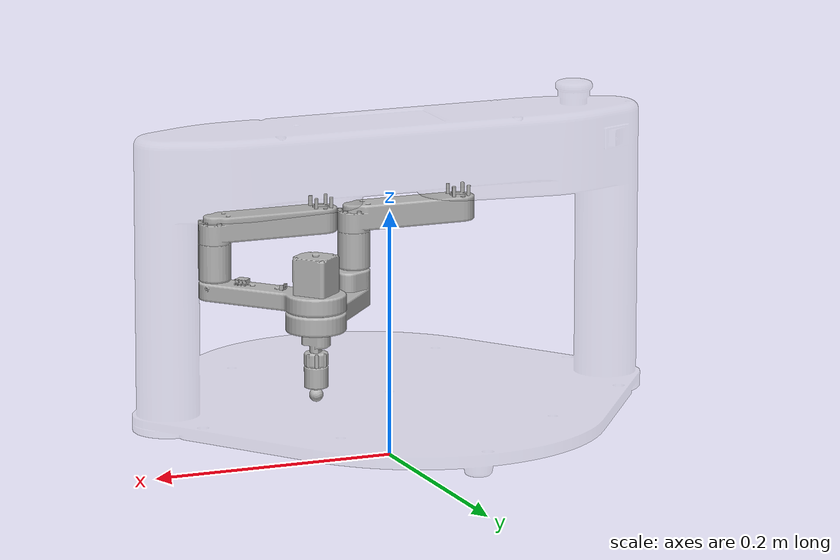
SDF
<?xml version="1.0" ?>
<sdf version="1.7">
  <model name="FiveBar">
    <pose>0 0 0.26  0 0 0</pose>
    <self_collide>false</self_collide>
    <link name="base">
      <pose>0 0 0.0  0 0 0.0</pose>
      <inertial>
        <pose>0 0 -0.5  0 0 0</pose>
        <mass>10.0</mass>
        <inertia>
          <ixx>1e-3</ixx>
          <iyy>1e-3</iyy>
          <izz>1e-3</izz>
          <ixy>0.0</ixy>
          <ixz>0.0</ixz>
          <iyz>0.0</iyz>
        </inertia>
      </inertial>
      <gravity>0</gravity>
      <visual name="baseVisual">
        <pose>0 0 0.0  0 0 3.141592653589793</pose>
        <geometry>
          <mesh>
            <uri>meshes/BASE_Assembly.stl</uri>
            <scale>0.001 0.001 0.001 </scale>
          </mesh>
        </geometry>
        <transparency>0.8</transparency>
      </visual>
    </link>
    <link name="upperArmLeft">
      <pose>0 0 0.0  0 0 0.0</pose>
      <inertial>
        <pose>-0.014 0 -0.07  0 0 0.0</pose>
        <mass>1.0</mass>
        <inertia>
          <ixx>1e-6</ixx>
          <iyy>1e-6</iyy>
          <izz>1e-6</izz>
          <ixy>0.0</ixy>
          <ixz>0.0</ixz>
          <iyz>0.0</iyz>
        </inertia>
      </inertial>
      <gravity>0</gravity>
      <visual name="upperArmLeftVisual">
        <pose>0 0 0.0  0 0 3.141592653589793</pose>
        <geometry>
          <mesh>
            <uri>meshes/Upper_Arm_1.stl</uri>
            <scale>0.001 0.001 0.001 </scale>
          </mesh>
        </geometry>
      </visual>
    </link>
    <link name="lowerArmLeft">
      <pose>0 0 0.0  0 0 0.0</pose>
      <inertial>
        <pose>0.09 0.06796322535 -0.1 0 0 0.0</pose>
        <mass>0.1</mass>
        <inertia>
          <ixx>1e-6</ixx>
          <iyy>1e-6</iyy>
          <izz>1e-6</izz>
          <ixy>0.0</ixy>
          <ixz>0.0</ixz>
          <iyz>0.0</iyz>
        </inertia>
      </inertial>
      <gravity>0</gravity>
      <visual name="lowerArmLeftVisual">
        <pose>0 0 0.0  0 0 3.141592653589793</pose>
        <geometry>
          <mesh>
            <uri>meshes/Lower_Arm.stl</uri>
            <scale>0.001 0.001 0.001 </scale>
          </mesh>
        </geometry>
      </visual>
    </link>
    <link name="upperArmRight">
      <pose>0 0 0.0  0 0 0.0</pose>
      <inertial>
        <pose>0.104 0 -0.07 0 0 0</pose>
        <mass>1.0</mass>
        <inertia>
          <ixx>1e-6</ixx>
          <iyy>1e-6</iyy>
          <izz>1e-6</izz>
          <ixy>0.0</ixy>
          <ixz>0.0</ixz>
          <iyz>0.0</iyz>
        </inertia>
      </inertial>
      <gravity>0</gravity>
      <visual name="upperArmRightVisual">
        <pose>0 0 0.0  0 0 3.141592653589793</pose>
        <geometry>
          <mesh>
            <uri>meshes/Upper_Arm_2.stl</uri>
            <scale>0.001 0.001 0.001 </scale>
          </mesh>
        </geometry>
      </visual>
    </link>
    <link name="lowerArmRight">
      <pose>0 0 0.0  0 0 0.0</pose>
      <inertial>
        <pose>0.09 0.06796322535 -0.1 0 0 0.0</pose>
        <mass>0.1</mass>
        <inertia>
          <ixx>1e-6</ixx>
          <iyy>1e-6</iyy>
          <izz>1e-6</izz>
          <ixy>0.0</ixy>
          <ixz>0.0</ixz>
          <iyz>0.0</iyz>
        </inertia>
      </inertial>
      <gravity>0</gravity>
      <visual name="lowerArmRightVisual">
        <pose>0 0 0.0  0 0 3.141592653589793</pose>
        <geometry>
          <mesh>
            <uri>meshes/Z_Axis_Assembly.stl</uri>
            <scale>0.001 0.001 0.001 </scale>
          </mesh>
        </geometry>
      </visual>
    </link>
    <link name="endEffector">
      <pose>0.09 0.06796322535 -0.1 0 0 0.0</pose>
      <inertial>
        <pose>0 0 0.0  0 0 0.0</pose>
        <mass>0.3</mass>
        <inertia>
          <ixx>1e-6</ixx>
          <iyy>1e-6</iyy>
          <izz>1e-6</izz>
          <ixy>0.0</ixy>
          <ixz>0.0</ixz>
          <iyz>0.0</iyz>
        </inertia>
      </inertial>
      <gravity>0</gravity>
    </link>
    <joint name="fixBase" type="fixed">
      <pose>0 0 0 0 0 0</pose>
      <parent>world</parent>
      <child>base</child>
    </joint>
    <joint name="A11" type="revolute">
      <pose>-0.059 0 -0.07 0 0 0</pose>
      <parent>world</parent>
      <child>upperArmLeft</child>
      <axis>
        <xyz>0 0 1</xyz>
      </axis>
    </joint>
    <joint name="A21" type="revolute">
      <pose>0.059 0 -0.07 0 0 0</pose>
      <parent>world</parent>
      <child>upperArmRight</child>
      <axis>
        <xyz>0 0 1</xyz>
      </axis>
    </joint>
    <joint name="A12" type="revolute">
      <pose>0.031 0 -0.07 0 0 0.0</pose>
      <parent>upperArmLeft</parent>
      <child>lowerArmLeft</child>
      <axis>
        <xyz>0 0 1</xyz>
      </axis>
    </joint>
    <joint name="A22" type="revolute">
      <pose>0.149 0 -0.07 0 0 0.0</pose>
      <parent>upperArmRight</parent>
      <child>lowerArmRight</child>
      <axis>
        <xyz>0 0 1</xyz>
      </axis>
    </joint>
    <joint name="A13" type="revolute">
      <pose>0.09 0.06796322535 -0.1 0 0 0.0</pose>
      <parent>lowerArmLeft</parent>
      <child>lowerArmRight</child>
      <axis>
        <xyz>0 0 1</xyz>
      </axis>
    </joint>
    <joint name="fixEndEffector" type="fixed">
      <pose>0.09 0.06796322535 -0.1 0 0 0.0</pose>
      <parent>lowerArmLeft</parent>
      <child>endEffector</child>
    </joint>
    <plugin name="gazebo_ros_cosimulation" filename="libgazebo_ros_cosimulation.so">
    </plugin>
  </model>
</sdf>
